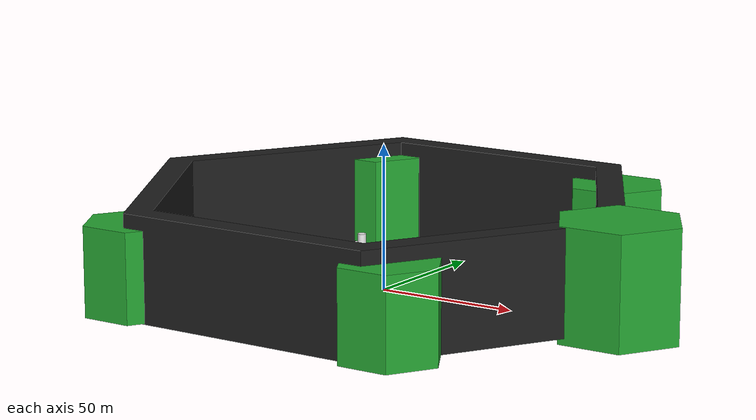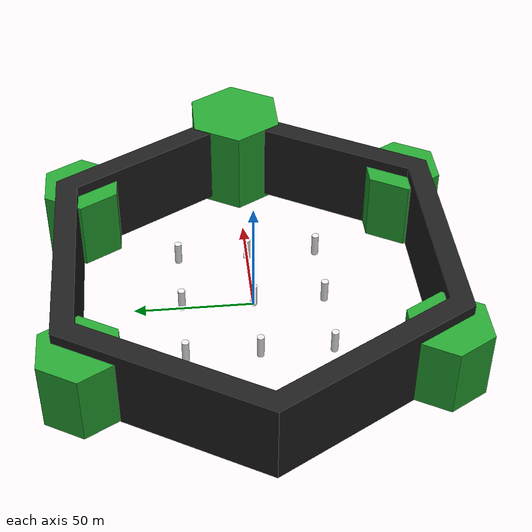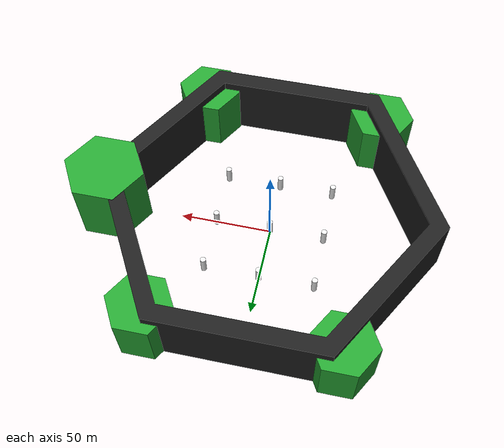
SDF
<sdf version='1.5'>
    <!-- Draw Circle -->
    <model name='ros_symbol'>
      <static>1</static>
      <link name='symbol'>
        <collision name='one_one'>
          <pose>-30 -30 5 0 -0 0</pose>
          <geometry>
            <cylinder>
              <radius>1.5</radius>
              <length>10</length>
            </cylinder>
          </geometry>
          <max_contacts>10</max_contacts>
          <surface>
            <bounce/>
            <friction>
              <ode/>
            </friction>
            <contact>
              <ode/>
            </contact>
          </surface>
        </collision>

        <visual name='one_one'>
          <pose>-30 -30 5 0 -0 0</pose>
          <geometry>
            <cylinder>
              <radius>1.5</radius>
              <length>10</length>
            </cylinder>
          </geometry>
          <material>
            <script>
              <uri>file://media/materials/scripts/gazebo.material</uri>
              <name>Gazebo/White</name>
            </script>
          </material>
        </visual>

        <collision name='one_two'>
          <pose>-30 0 5 0 -0 0</pose>
          <geometry>
            <cylinder>
              <radius>1.5</radius>
              <length>10</length>
            </cylinder>
          </geometry>
          <max_contacts>10</max_contacts>
          <surface>
            <bounce/>
            <friction>
              <ode/>
            </friction>
            <contact>
              <ode/>
            </contact>
          </surface>
        </collision>

        <visual name='one_two'>
          <pose>-30 0 5 0 -0 0</pose>
          <geometry>
            <cylinder>
              <radius>1.5</radius>
              <length>10</length>
            </cylinder>
          </geometry>
          <material>
            <script>
              <uri>file://media/materials/scripts/gazebo.material</uri>
              <name>Gazebo/White</name>
            </script>
          </material>
        </visual>

        <collision name='one_three'>
          <pose>-30 30 5 0 -0 0</pose>
          <geometry>
            <cylinder>
              <radius>1.5</radius>
              <length>10</length>
            </cylinder>
          </geometry>
          <max_contacts>10</max_contacts>
          <surface>
            <bounce/>
            <friction>
              <ode/>
            </friction>
            <contact>
              <ode/>
            </contact>
          </surface>
        </collision>

        <visual name='one_three'>
          <pose>-30 30 5 0 -0 0</pose>
          <geometry>
            <cylinder>
              <radius>1.5</radius>
              <length>10</length>
            </cylinder>
          </geometry>
          <material>
            <script>
              <uri>file://media/materials/scripts/gazebo.material</uri>
              <name>Gazebo/White</name>
            </script>
          </material>
        </visual>

        <collision name='two_one'>
          <pose>0 -30 5 0 -0 0</pose>
          <geometry>
            <cylinder>
              <radius>1.5</radius>
              <length>10</length>
            </cylinder>
          </geometry>
          <max_contacts>10</max_contacts>
          <surface>
            <bounce/>
            <friction>
              <ode/>
            </friction>
            <contact>
              <ode/>
            </contact>
          </surface>
        </collision>

        <visual name='two_one'>
          <pose>0 -30 5 0 -0 0</pose>
          <geometry>
            <cylinder>
              <radius>1.5</radius>
              <length>10</length>
            </cylinder>
          </geometry>
          <material>
            <script>
              <uri>file://media/materials/scripts/gazebo.material</uri>
              <name>Gazebo/White</name>
            </script>
          </material>
        </visual>

        <collision name='two_two'>
          <pose>0 0 5 0 -0 0</pose>
          <geometry>
            <cylinder>
              <radius>1.5</radius>
              <length>10</length>
            </cylinder>
          </geometry>
          <max_contacts>10</max_contacts>
          <surface>
            <bounce/>
            <friction>
              <ode/>
            </friction>
            <contact>
              <ode/>
            </contact>
          </surface>
        </collision>

        <visual name='two_two'>
          <pose>0 0 5 0 -0 0</pose>
          <geometry>
            <cylinder>
              <radius>1.5</radius>
              <length>10</length>
            </cylinder>
          </geometry>
          <material>
            <script>
              <uri>file://media/materials/scripts/gazebo.material</uri>
              <name>Gazebo/White</name>
            </script>
          </material>
        </visual>

        <collision name='two_three'>
          <pose>0 30 5 0 -0 0</pose>
          <geometry>
            <cylinder>
              <radius>1.5</radius>
              <length>10</length>
            </cylinder>
          </geometry>
          <max_contacts>10</max_contacts>
          <surface>
            <bounce/>
            <friction>
              <ode/>
            </friction>
            <contact>
              <ode/>
            </contact>
          </surface>
        </collision>

        <visual name='two_three'>
          <pose>0 30 5 0 -0 0</pose>
          <geometry>
            <cylinder>
              <radius>1.5</radius>
              <length>10</length>
            </cylinder>
          </geometry>
          <material>
            <script>
              <uri>file://media/materials/scripts/gazebo.material</uri>
              <name>Gazebo/White</name>
            </script>
          </material>
        </visual>

        <collision name='three_one'>
          <pose>30 -30 5 0 -0 0</pose>
          <geometry>
            <cylinder>
              <radius>1.5</radius>
              <length>10</length>
            </cylinder>
          </geometry>
          <max_contacts>10</max_contacts>
          <surface>
            <bounce/>
            <friction>
              <ode/>
            </friction>
            <contact>
              <ode/>
            </contact>
          </surface>
        </collision>

        <visual name='three_one'>
          <pose>30 -30 5 0 -0 0</pose>
          <geometry>
            <cylinder>
              <radius>1.5</radius>
              <length>10</length>
            </cylinder>
          </geometry>
          <material>
            <script>
              <uri>file://media/materials/scripts/gazebo.material</uri>
              <name>Gazebo/White</name>
            </script>
          </material>
        </visual>

        <collision name='three_two'>
          <pose>30 0 5 0 -0 0</pose>
          <geometry>
            <cylinder>
              <radius>1.5</radius>
              <length>10</length>
            </cylinder>
          </geometry>
          <max_contacts>10</max_contacts>
          <surface>
            <bounce/>
            <friction>
              <ode/>
            </friction>
            <contact>
              <ode/>
            </contact>
          </surface>
        </collision>

        <visual name='three_two'>
          <pose>30 0 5 0 -0 0</pose>
          <geometry>
            <cylinder>
              <radius>1.5</radius>
              <length>10</length>
            </cylinder>
          </geometry>
          <material>
            <script>
              <uri>file://media/materials/scripts/gazebo.material</uri>
              <name>Gazebo/White</name>
            </script>
          </material>
        </visual>

        <collision name='three_three'>
          <pose>30 30 5 0 -0 0</pose>
          <geometry>
            <cylinder>
              <radius>1.5</radius>
              <length>10</length>
            </cylinder>
          </geometry>
          <max_contacts>10</max_contacts>
          <surface>
            <bounce/>
            <friction>
              <ode/>
            </friction>
            <contact>
              <ode/>
            </contact>
          </surface>
        </collision>

        <visual name='three_three'>
          <pose>30 30 5 0 -0 0</pose>
          <geometry>
            <cylinder>
              <radius>1.5</radius>
              <length>10</length>
            </cylinder>
          </geometry>
          <material>
            <script>
              <uri>file://media/materials/scripts/gazebo.material</uri>
              <name>Gazebo/White</name>
            </script>
          </material>
        </visual>

        <!-- Draw Hexagon -->
        <collision name='head'>
          <pose>90 0 -2.5 0 -0 0</pose>
          <geometry>
            <mesh>
              <uri>model://turtlebot3_world/meshes/hexagon.dae</uri>
              <scale>15 15 15</scale>
            </mesh>
          </geometry>
          <max_contacts>10</max_contacts>
          <surface>
            <bounce/>
            <friction>
              <ode/>
            </friction>
            <contact>
              <ode/>
            </contact>
          </surface>
        </collision>

        <visual name='head'>
          <pose>90 0 -2.5 0 -0 0</pose>
          <geometry>
            <mesh>
              <uri>model://turtlebot3_world/meshes/hexagon.dae</uri>
              <scale>15 15 15</scale>
            </mesh>
          </geometry>
          <material>
            <script>
              <uri>file://media/materials/scripts/gazebo.material</uri>
              <name>Gazebo/Green</name>
            </script>
          </material>
        </visual>

        <collision name='left_hand'>
          <pose>50 -70 0 0 -0 0</pose>
          <geometry>
            <mesh>
              <uri>model://turtlebot3_world/meshes/hexagon.dae</uri>
              <scale>12 12 12</scale>
            </mesh>
          </geometry>
          <max_contacts>10</max_contacts>
          <surface>
            <bounce/>
            <friction>
              <ode/>
            </friction>
            <contact>
              <ode/>
            </contact>
          </surface>
        </collision>

        <visual name='left_hand'>
          <pose>50 -70 0 0 -0 0</pose>
          <geometry>
            <mesh>
              <uri>model://turtlebot3_world/meshes/hexagon.dae</uri>
              <scale>12 12 12</scale>
            </mesh>
          </geometry>
          <material>
            <script>
              <uri>file://media/materials/scripts/gazebo.material</uri>
              <name>Gazebo/Green</name>
            </script>
          </material>
        </visual>

        <collision name='right_hand'>
            <pose>50 70 0 0 -0 0</pose>
            <geometry>
            <mesh>
              <uri>model://turtlebot3_world/meshes/hexagon.dae</uri>
              <scale>12 12 12</scale>
            </mesh>
          </geometry>
          <max_contacts>10</max_contacts>
          <surface>
            <bounce/>
            <friction>
              <ode/>
            </friction>
            <contact>
              <ode/>
            </contact>
          </surface>
        </collision>

        <visual name='right_hand'>
            <pose>50 70 0 0 -0 0</pose>
            <geometry>
            <mesh>
              <uri>model://turtlebot3_world/meshes/hexagon.dae</uri>
              <scale>12 12 12</scale>
            </mesh>
          </geometry>
          <material>
            <script>
              <uri>file://media/materials/scripts/gazebo.material</uri>
              <name>Gazebo/Green</name>
            </script>
          </material>
        </visual>

        <collision name='left_foot'>
          <pose>-50 -70 0 0 -0 0</pose>
          <geometry>
            <mesh>
              <uri>model://turtlebot3_world/meshes/hexagon.dae</uri>
              <scale>12 12 12</scale>
            </mesh>
          </geometry>
          <max_contacts>10</max_contacts>
          <surface>
            <bounce/>
            <friction>
              <ode/>
            </friction>
            <contact>
              <ode/>
            </contact>
          </surface>
        </collision>

        <visual name='left_foot'>
          <pose>-50 -70 0 0 -0 0</pose>
          <geometry>
            <mesh>
            <uri>model://turtlebot3_world/meshes/hexagon.dae</uri>
            <scale>12 12 12</scale>
            </mesh>
          </geometry>
          <material>
            <script>
              <uri>file://media/materials/scripts/gazebo.material</uri>
              <name>Gazebo/Green</name>
            </script>
          </material>
        </visual>

        <collision name='right_foot'>
          <pose>-50 70 0 0 -0 0</pose>
          <geometry>
            <mesh>
              <uri>model://turtlebot3_world/meshes/hexagon.dae</uri>
              <scale>12 12 12</scale>
            </mesh>
          </geometry>
          <max_contacts>10</max_contacts>
          <surface>
            <bounce/>
            <friction>
              <ode/>
            </friction>
            <contact>
              <ode/>
            </contact>
          </surface>
        </collision>

        <visual name='right_foot'>
          <pose>-50 70 0 0 -0 0</pose>
          <geometry>
            <mesh>
              <uri>model://turtlebot3_world/meshes/hexagon.dae</uri>
              <scale>12 12 12</scale>
            </mesh>
          </geometry>
          <material>
            <script>
              <uri>file://media/materials/scripts/gazebo.material</uri>
              <name>Gazebo/Green</name>
            </script>
          </material>
        </visual>

        <!-- Draw Wall -->
        <collision name='body'>
          <pose>0 0 -0.3 0 0 -1.5708</pose>
        <geometry>
          <mesh>
            <uri>model://turtlebot3_world/meshes/wall.dae</uri>
            <scale>7 7 7</scale>
          </mesh>
        </geometry>
        <max_contacts>10</max_contacts>
        <surface>
          <bounce/>
          <friction>
            <ode/>
          </friction>
          <contact>
            <ode/>
          </contact>
        </surface>
      </collision>

      <visual name='body'>
        <pose>0 0 -0.3 0 0 -1.5708</pose>
        <geometry>
          <mesh>
            <uri>model://turtlebot3_world/meshes/wall.dae</uri>
            <scale>7 7 7</scale>
          </mesh>
        </geometry>
        <material>
          <script>
            <uri>file://media/materials/scripts/gazebo.material</uri>
            <name>Gazebo/FlatBlack</name>
          </script>
        </material>
      </visual>
    </link>
  </model>
</sdf>
